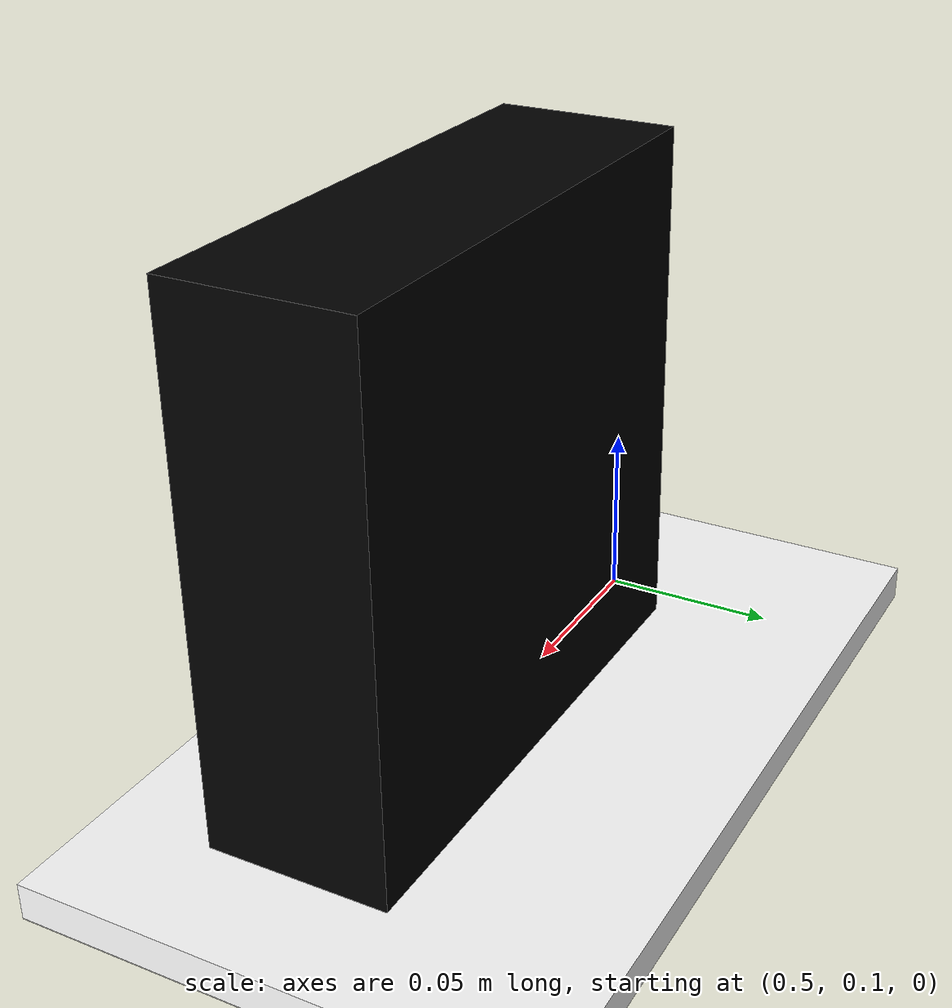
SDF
<!--
// Copyright (c) 2019-2020 Ricardo Tonet
// Use of this source code is governed by the MIT license, see LICENSE
 -->
<?xml version="1.0"?>
<sdf version="1.4">
  <world name="empty">
    <include>
      <uri>model://ground_plane</uri>
    </include>

    <include>
      <uri>model://sun</uri>
    </include>

    <model name="floor">
      <pose>0 0 0.005 0 0 0</pose>
      <static>true</static>
      <link name="link">
        <inertial>
          <mass>1.0</mass>
          <inertia> <!-- inertias are tricky to compute -->
            <!-- http://gazebosim.org/tutorials?tut=inertia&cat=build_robot -->
            <ixx>0.083</ixx>       <!-- for a box: ixx = 0.083 * mass * (y*y + z*z) -->
            <ixy>0.0</ixy>         <!-- for a box: ixy = 0 -->
            <ixz>0.0</ixz>         <!-- for a box: ixz = 0 -->
            <iyy>0.083</iyy>       <!-- for a box: iyy = 0.083 * mass * (x*x + z*z) -->
            <iyz>0.0</iyz>         <!-- for a box: iyz = 0 -->
            <izz>0.083</izz>       <!-- for a box: izz = 0.083 * mass * (x*x + y*y) -->
          </inertia>
        </inertial>
        <collision name="collision">
          <geometry>
            <box>
              <size>2 2 0.01</size>
            </box>
          </geometry>
        </collision>
        <visual name="visual">
          <geometry>
            <box>
              <size>2 2 0.01</size>
            </box>
          </geometry>
          <material>
            <ambient>1 1 1 1</ambient>
            <diffuse>1 1 1 1</diffuse>
            <specular>0 0 0 0</specular>
            <emissive>0 0 0 1</emissive>
          </material>
        </visual>
      </link>
    </model>

    <model name="box_3">
      <pose>0.6 0.1 0.08 0 0 0</pose>
      <static>true</static>
      <link name="link">
        <inertial>
          <mass>1.0</mass>
          <inertia>
            <ixx>0.083</ixx>
            <ixy>0.0</ixy>
            <ixz>0.0</ixz>
            <iyy>0.083</iyy>
            <iyz>0.0</iyz>
            <izz>0.083</izz>
          </inertia>
        </inertial>
        <collision name="collision">
          <geometry>
            <box>
              <size>0.15 0.05 0.15</size>
            </box>
          </geometry>
        </collision>
        <visual name="visual">
          <geometry>
            <box>
              <size>0.15 0.05 0.15</size>
            </box>
          </geometry>
          <material>
            <ambient>0 0 0 1</ambient>
            <diffuse>0 0 0 1</diffuse>
            <specular>0 0 0 0</specular>
            <emissive>0 0 0 1</emissive>
          </material>
        </visual>
      </link>
    </model>

  </world>
</sdf>
